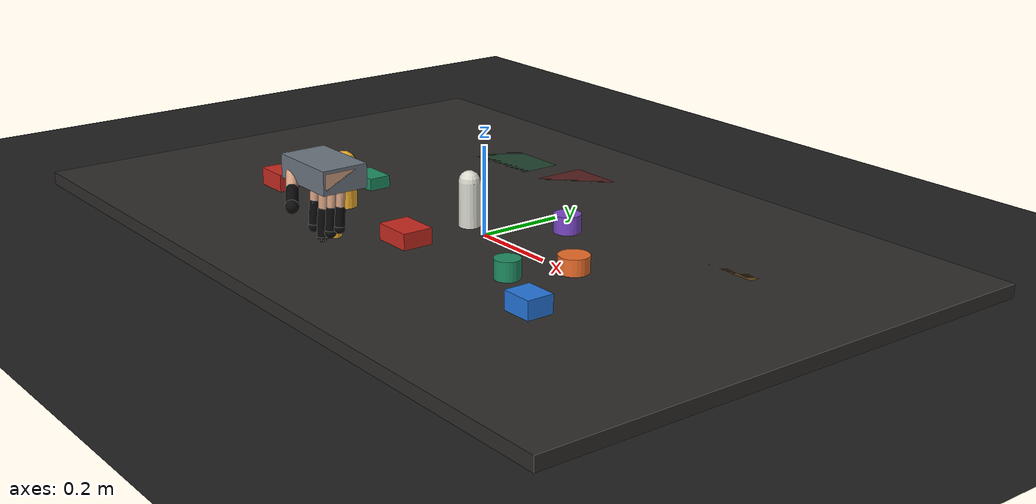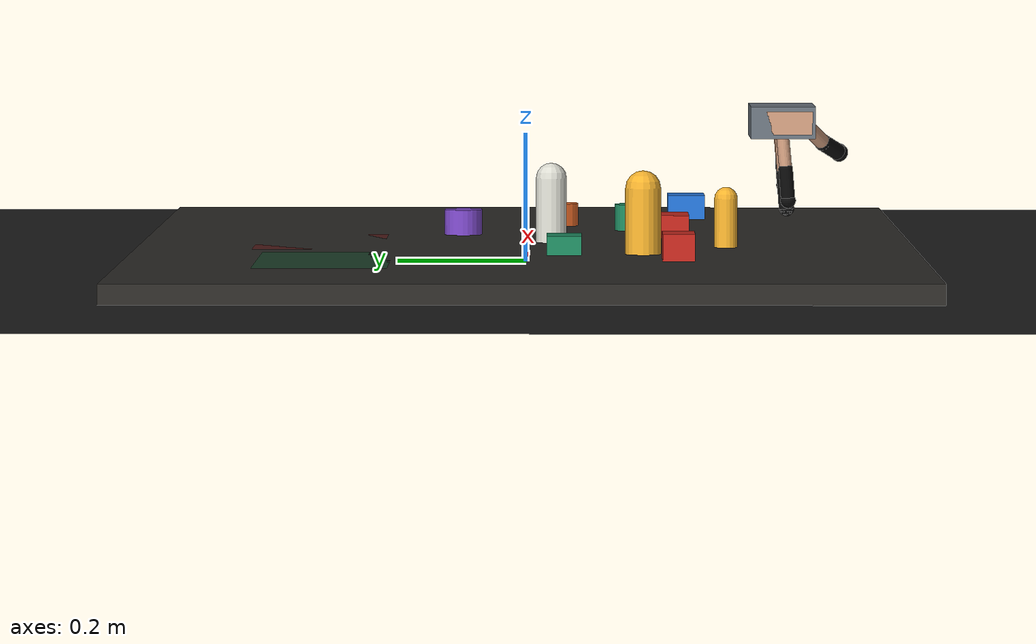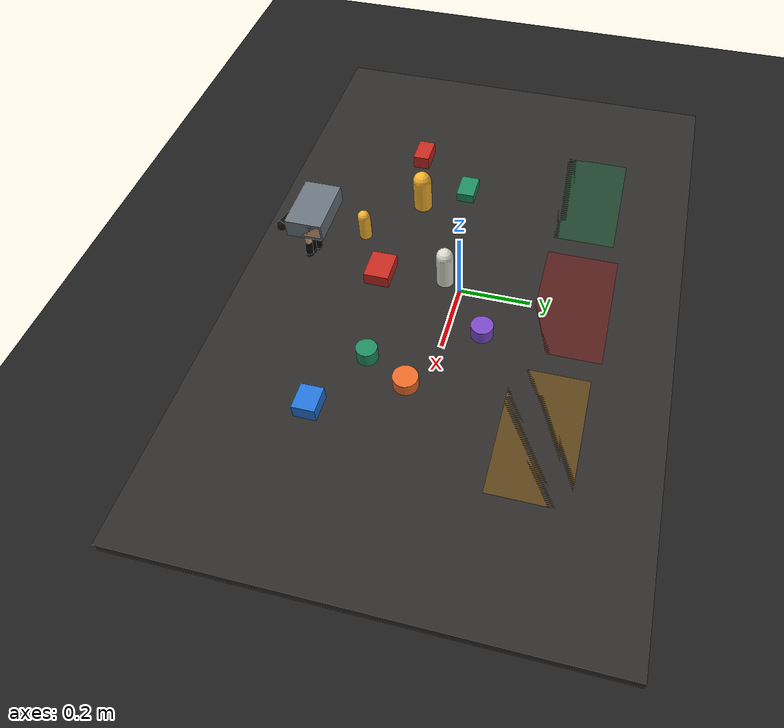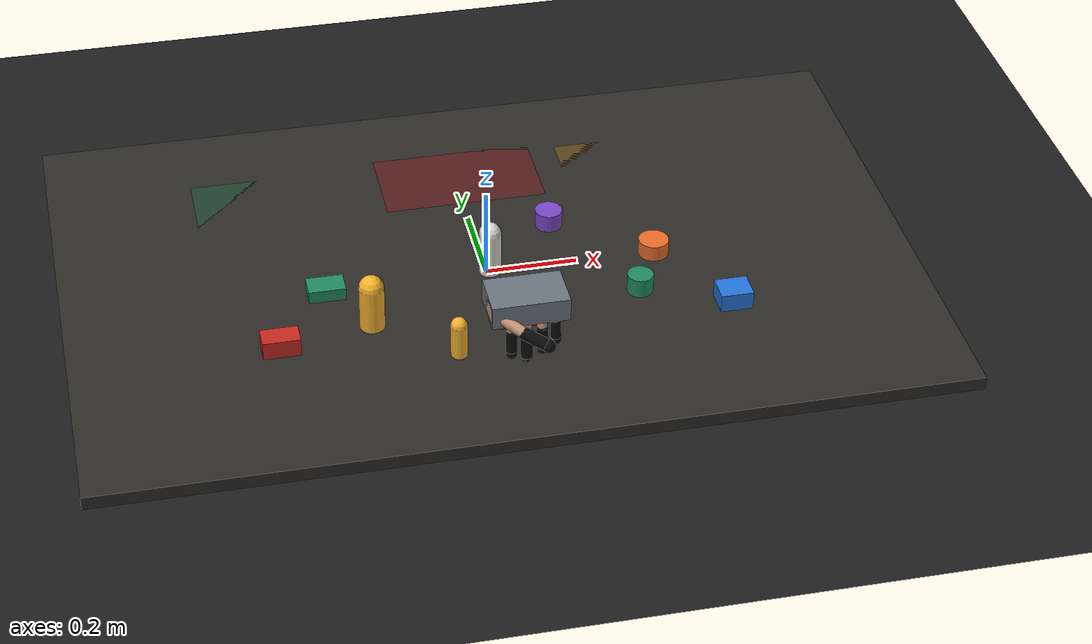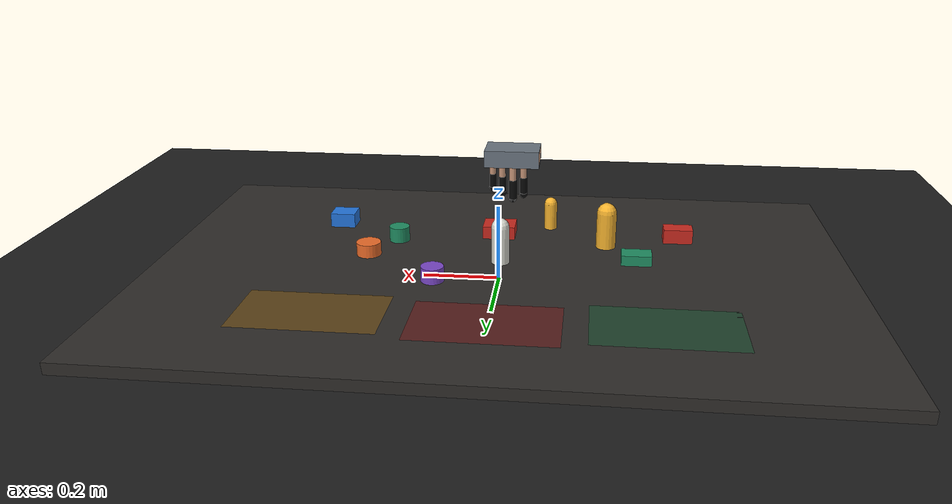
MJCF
<mujoco model="dexrescue_tactile_forge">
  <compiler angle="radian" inertiafromgeom="true"/>
  <option timestep="0.004" gravity="0 0 -9.81" integrator="implicitfast" cone="elliptic" viscosity="0.002"/>
  <visual>
    <global offwidth="1280" offheight="720"/>
  </visual>

  <default>
    <geom friction="1.3 0.02 0.002" solimp="0.92 0.98 0.002" solref="0.012 1"/>
    <joint damping="0.8" armature="0.015" limited="true"/>
    <position kp="260" kv="32" ctrlrange="-1 1"/>
  </default>

  <asset>
    <texture name="grid" type="2d" builtin="checker" width="256" height="256"
             rgb1="0.08 0.09 0.10" rgb2="0.16 0.15 0.14"/>
    <material name="floor_mat" texture="grid" texrepeat="8 8" reflectance="0.15"/>
    <material name="steel" rgba="0.42 0.46 0.50 1"/>
    <material name="rubber" rgba="0.04 0.04 0.04 1"/>
    <material name="skin" rgba="0.82 0.62 0.50 1"/>
    <material name="safe" rgba="0.12 0.55 0.38 1"/>
    <material name="urgent" rgba="0.78 0.16 0.12 1"/>
    <material name="fragile" rgba="0.96 0.70 0.18 1"/>
    <material name="blue" rgba="0.14 0.46 0.86 1"/>
    <material name="violet" rgba="0.48 0.28 0.78 1"/>
    <material name="white" rgba="0.86 0.86 0.82 1"/>
    <material name="orange" rgba="0.92 0.42 0.16 1"/>
    <material name="zone_green" rgba="0.07 0.45 0.24 0.38"/>
    <material name="zone_red" rgba="0.62 0.08 0.08 0.38"/>
    <material name="zone_yellow" rgba="0.70 0.46 0.04 0.38"/>
  </asset>

  <worldbody>
    <light pos="0 -1.2 1.8" dir="0 0.6 -1" diffuse="0.9 0.85 0.78"/>
    <camera name="overview" pos="0.75 -1.65 1.05" xyaxes="0.92 0.39 0 -0.22 0.51 0.83"/>
    <camera name="wrist_cam" pos="0.05 -0.70 0.45" xyaxes="1 0 0 0 0.58 0.82"/>

    <geom name="floor" type="plane" size="1.4 1.1 0.04" material="floor_mat"/>
    <geom name="workbench" type="box" pos="0 0 0.015" size="0.92 0.60 0.015" rgba="0.18 0.17 0.16 1"/>

    <geom name="triage_green_zone" type="box" pos="-0.42 0.30 0.026" size="0.18 0.10 0.004" material="zone_green" contype="0" conaffinity="0"/>
    <geom name="triage_red_zone" type="box" pos="0 0.32 0.026" size="0.18 0.10 0.004" material="zone_red" contype="0" conaffinity="0"/>
    <geom name="triage_yellow_zone" type="box" pos="0.42 0.30 0.026" size="0.18 0.10 0.004" material="zone_yellow" contype="0" conaffinity="0"/>

    <body name="med_vial" pos="-0.28 -0.18 0.075">
      <freejoint/>
      <geom name="med_vial_geom" type="capsule" size="0.027 0.055" material="fragile" mass="0.055" contype="2" conaffinity="1"/>
      <site name="med_vial_site" pos="0 0 0" size="0.012" rgba="1 0.75 0.2 1"/>
    </body>
    <body name="thermal_tag" pos="0.02 -0.22 0.055">
      <freejoint/>
      <geom name="thermal_tag_geom" type="box" size="0.045 0.035 0.018" material="urgent" mass="0.08" contype="2" conaffinity="1"/>
      <site name="thermal_tag_site" pos="0 0 0" size="0.012" rgba="1 0.1 0.1 1"/>
    </body>
    <body name="salvage_key" pos="0.30 -0.17 0.050">
      <freejoint/>
      <geom name="salvage_key_geom" type="cylinder" size="0.028 0.022" material="safe" mass="0.075" contype="2" conaffinity="1"/>
      <site name="salvage_key_site" pos="0 0 0" size="0.012" rgba="0.1 1 0.45 1"/>
    </body>
    <body name="airway_clip" pos="-0.48 -0.23 0.055">
      <freejoint/>
      <geom name="airway_clip_geom" type="box" size="0.040 0.024 0.020" material="urgent" mass="0.065" contype="2" conaffinity="1"/>
      <site name="airway_clip_site" pos="0 0 0" size="0.011" rgba="1 0.1 0.1 1"/>
    </body>
    <body name="iv_connector" pos="-0.12 -0.31 0.060">
      <freejoint/>
      <geom name="iv_connector_geom" type="capsule" size="0.018 0.045" material="fragile" mass="0.045" contype="2" conaffinity="1"/>
      <site name="iv_connector_site" pos="0 0 0" size="0.011" rgba="1 0.75 0.2 1"/>
    </body>
    <body name="radio_beacon" pos="0.48 -0.26 0.058">
      <freejoint/>
      <geom name="radio_beacon_geom" type="box" size="0.035 0.030 0.020" material="blue" mass="0.080" contype="2" conaffinity="1"/>
      <site name="radio_beacon_site" pos="0 0 0" size="0.011" rgba="0.2 0.55 1 1"/>
    </body>
    <body name="data_chip" pos="-0.36 -0.06 0.050">
      <freejoint/>
      <geom name="data_chip_geom" type="box" size="0.040 0.026 0.014" material="safe" mass="0.050" contype="2" conaffinity="1"/>
      <site name="data_chip_site" pos="0 0 0" size="0.010" rgba="0.1 1 0.45 1"/>
    </body>
    <body name="pressure_syringe" pos="0.00 -0.04 0.070">
      <freejoint/>
      <geom name="pressure_syringe_geom" type="capsule" size="0.024 0.060" material="white" mass="0.080" contype="2" conaffinity="1"/>
      <site name="pressure_syringe_site" pos="0 0 0" size="0.011" rgba="0.9 0.9 0.85 1"/>
    </body>
    <body name="hazmat_cap" pos="0.36 -0.05 0.052">
      <freejoint/>
      <geom name="hazmat_cap_geom" type="cylinder" size="0.033 0.018" material="orange" mass="0.050" contype="2" conaffinity="1"/>
      <site name="hazmat_cap_site" pos="0 0 0" size="0.011" rgba="1 0.5 0.15 1"/>
    </body>
    <body name="seal_puck" pos="0.16 0.10 0.052">
      <freejoint/>
      <geom name="seal_puck_geom" type="cylinder" size="0.030 0.020" material="violet" mass="0.055" contype="2" conaffinity="1"/>
      <site name="seal_puck_site" pos="0 0 0" size="0.010" rgba="0.62 0.35 1 1"/>
    </body>

    <body name="gantry" pos="0 -0.40 0.22">
      <joint name="slide_x" type="slide" axis="1 0 0" range="-0.62 0.62" damping="18"/>
      <joint name="slide_y" type="slide" axis="0 1 0" range="-0.10 0.65" damping="18"/>
      <joint name="lift_z" type="slide" axis="0 0 1" range="-0.12 0.22" damping="20"/>
      <geom type="box" size="0.08 0.05 0.025" material="steel" mass="0.6"/>
      <body name="palm" pos="0 0 0">
        <joint name="wrist_roll" type="hinge" axis="0 1 0" range="-0.8 0.8"/>
        <geom name="palm_pad" type="box" pos="0 0 0" size="0.08 0.045 0.018" material="skin" mass="0.18"/>
        <site name="palm_center" pos="0 0 -0.030" size="0.008" rgba="0.2 0.8 1 1"/>

        <body name="thumb_base" pos="-0.065 -0.035 -0.005" euler="0 0 -0.55">
          <joint name="thumb_abd" type="hinge" axis="0 0 1" range="-0.65 0.55"/>
          <geom type="capsule" fromto="0 0 0 0.055 0 -0.028" size="0.012" material="skin" mass="0.035"/>
          <body name="thumb_tip" pos="0.055 0 -0.028">
            <joint name="thumb_flex" type="hinge" axis="0 1 0" range="-0.15 1.25"/>
            <geom name="thumb_touch_geom" type="capsule" fromto="0 0 0 0.052 0 -0.018" size="0.013" material="rubber" mass="0.025"/>
            <site name="thumb_touch" pos="0.052 0 -0.018" size="0.014" rgba="0.05 0.05 0.05 1"/>
          </body>
        </body>

        <body name="index_base" pos="-0.032 0 -0.018">
          <joint name="index_mcp" type="hinge" axis="1 0 0" range="-0.15 1.25"/>
          <geom type="capsule" fromto="0 0 0 0 -0.005 -0.055" size="0.010" material="skin" mass="0.026"/>
          <body name="index_tip" pos="0 -0.005 -0.055">
            <joint name="index_pip" type="hinge" axis="1 0 0" range="-0.10 1.35"/>
            <geom name="index_touch_geom" type="capsule" fromto="0 0 0 0 -0.004 -0.050" size="0.011" material="rubber" mass="0.018"/>
            <site name="index_touch" pos="0 -0.004 -0.050" size="0.012" rgba="0.05 0.05 0.05 1"/>
          </body>
        </body>

        <body name="middle_base" pos="0 0 -0.020">
          <joint name="middle_mcp" type="hinge" axis="1 0 0" range="-0.15 1.30"/>
          <geom type="capsule" fromto="0 0 0 0 -0.004 -0.062" size="0.011" material="skin" mass="0.030"/>
          <body name="middle_tip" pos="0 -0.004 -0.062">
            <joint name="middle_pip" type="hinge" axis="1 0 0" range="-0.10 1.40"/>
            <geom name="middle_touch_geom" type="capsule" fromto="0 0 0 0 -0.004 -0.055" size="0.012" material="rubber" mass="0.020"/>
            <site name="middle_touch" pos="0 -0.004 -0.055" size="0.012" rgba="0.05 0.05 0.05 1"/>
          </body>
        </body>

        <body name="ring_base" pos="0.032 0 -0.018">
          <joint name="ring_mcp" type="hinge" axis="1 0 0" range="-0.15 1.20"/>
          <geom type="capsule" fromto="0 0 0 0 -0.005 -0.054" size="0.010" material="skin" mass="0.024"/>
          <body name="ring_tip" pos="0 -0.005 -0.054">
            <joint name="ring_pip" type="hinge" axis="1 0 0" range="-0.10 1.30"/>
            <geom name="ring_touch_geom" type="capsule" fromto="0 0 0 0 -0.004 -0.048" size="0.011" material="rubber" mass="0.018"/>
            <site name="ring_touch" pos="0 -0.004 -0.048" size="0.012" rgba="0.05 0.05 0.05 1"/>
          </body>
        </body>

        <body name="little_base" pos="0.060 0.002 -0.016" euler="0 0 0.08">
          <joint name="little_mcp" type="hinge" axis="1 0 0" range="-0.15 1.15"/>
          <geom type="capsule" fromto="0 0 0 0 -0.004 -0.047" size="0.009" material="skin" mass="0.018"/>
          <body name="little_tip" pos="0 -0.004 -0.047">
            <joint name="little_pip" type="hinge" axis="1 0 0" range="-0.10 1.25"/>
            <geom name="little_touch_geom" type="capsule" fromto="0 0 0 0 -0.003 -0.041" size="0.010" material="rubber" mass="0.014"/>
            <site name="little_touch" pos="0 -0.003 -0.041" size="0.011" rgba="0.05 0.05 0.05 1"/>
          </body>
        </body>
      </body>
    </body>
  </worldbody>

  <actuator>
    <position name="gantry_x" joint="slide_x" ctrlrange="-0.62 0.62" kp="520" kv="85"/>
    <position name="gantry_y" joint="slide_y" ctrlrange="-0.10 0.65" kp="520" kv="85"/>
    <position name="gantry_z" joint="lift_z" ctrlrange="-0.12 0.22" kp="620" kv="95"/>
    <position name="wrist_roll_ctrl" joint="wrist_roll" ctrlrange="-0.8 0.8" kp="90" kv="16"/>
    <position name="thumb_abd_ctrl" joint="thumb_abd" ctrlrange="-0.65 0.55" kp="80" kv="12"/>
    <position name="thumb_flex_ctrl" joint="thumb_flex" ctrlrange="-0.15 1.25" kp="80" kv="12"/>
    <position name="index_mcp_ctrl" joint="index_mcp" ctrlrange="-0.15 1.25" kp="85" kv="12"/>
    <position name="index_pip_ctrl" joint="index_pip" ctrlrange="-0.10 1.35" kp="75" kv="10"/>
    <position name="middle_mcp_ctrl" joint="middle_mcp" ctrlrange="-0.15 1.30" kp="85" kv="12"/>
    <position name="middle_pip_ctrl" joint="middle_pip" ctrlrange="-0.10 1.40" kp="75" kv="10"/>
    <position name="ring_mcp_ctrl" joint="ring_mcp" ctrlrange="-0.15 1.20" kp="75" kv="10"/>
    <position name="ring_pip_ctrl" joint="ring_pip" ctrlrange="-0.10 1.30" kp="65" kv="9"/>
    <position name="little_mcp_ctrl" joint="little_mcp" ctrlrange="-0.15 1.15" kp="65" kv="9"/>
    <position name="little_pip_ctrl" joint="little_pip" ctrlrange="-0.10 1.25" kp="60" kv="8"/>
  </actuator>

  <sensor>
    <framepos name="palm_position" objtype="site" objname="palm_center"/>
    <touch name="thumb_touch_force" site="thumb_touch"/>
    <touch name="index_touch_force" site="index_touch"/>
    <touch name="middle_touch_force" site="middle_touch"/>
    <touch name="ring_touch_force" site="ring_touch"/>
    <touch name="little_touch_force" site="little_touch"/>
    <jointpos name="thumb_flexion" joint="thumb_flex"/>
    <jointpos name="index_flexion" joint="index_mcp"/>
    <jointpos name="middle_flexion" joint="middle_mcp"/>
    <jointvel name="wrist_roll_rate" joint="wrist_roll"/>
  </sensor>
</mujoco>
